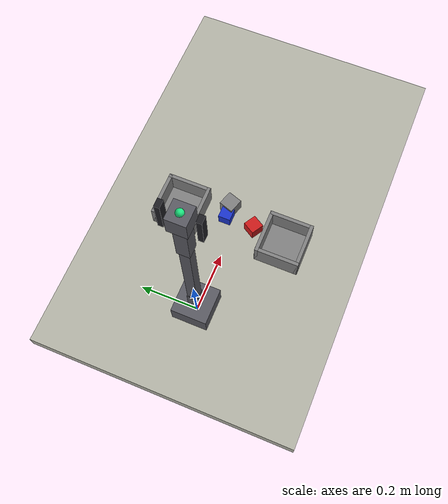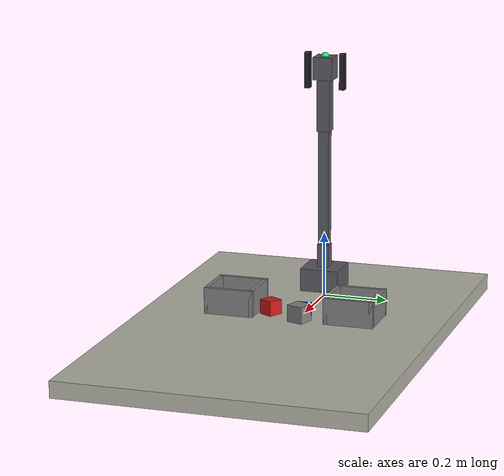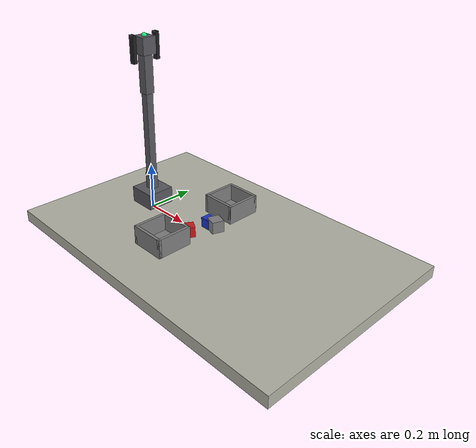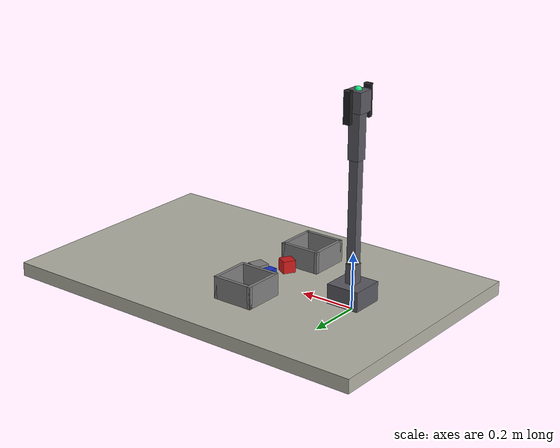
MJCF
<mujoco model="Autonomous reference tabletop arm revision_regression_scene_task_req_a_tabletop_robot_arm_that_sorts_red_and_blue_blo_stress_002">
  <compiler angle="radian" coordinate="local" />
  <option timestep="0.002" gravity="0 0 -9.81" />
  <default>
    <joint damping="0.8" armature="0.01" />
    <geom friction="1 0.1 0.01" />
  </default>
  <asset>
    <material name="mat_red" rgba="0.8 0.1 0.1 1" />
    <material name="mat_blue" rgba="0.1 0.2 0.8 1" />
    <material name="mat_gray" rgba="0.5 0.5 0.5 1" />
    <material name="mat_link" rgba="0.35 0.35 0.38 1" />
  </asset>
  <worldbody>
    <light name="key" pos="0 0 2" dir="0 0 -1" />
    <geom name="table" type="box" size="0.7 0.45 0.025" pos="0.4 0 0" rgba="0.7 0.7 0.65 1" />
    <body name="base_link" pos="0.0 0.0 0.025">
      <geom name="base_link_geom" type="box" size="0.06 0.06 0.035" pos="0 0 0.035" mass="0.45" material="mat_link" />
      <body name="upper_link" pos="0.0 0.0 0.07">
        <joint name="base_yaw" type="hinge" axis="0.0 0.0 1.0" pos="0 0 0" limited="true" range="-3.14 3.14" />
        <geom name="upper_link_geom" type="box" size="0.018 0.018 0.035" pos="0 0 0.035" mass="0.22" material="mat_link" />
        <body name="forearm_link" pos="0.0 0.0 0.07">
          <joint name="shoulder_pitch" type="hinge" axis="0.0 1.0 0.0" pos="0 0 0" limited="true" range="-1.57 1.57" />
          <geom name="forearm_link_geom" type="box" size="0.016 0.016 0.1785" pos="0 0 0.1785" mass="0.18" material="mat_link" />
          <body name="wrist_link" pos="0.0 0.0 0.357">
            <joint name="elbow_pitch" type="hinge" axis="0.0 1.0 0.0" pos="0 0 0" limited="true" range="-1.57 1.57" />
            <geom name="wrist_link_geom" type="box" size="0.02 0.02 0.08" pos="0 0 0.08" mass="0.035" material="mat_link" />
            <camera name="wrist_rgbd_camera" pos="0.03 0.0 0.04" xyaxes="0 -1 0 0 0 1" mode="fixed" user="0.0 0.0 0.0" />
            <body name="gripper_link" pos="0.0 0.0 0.16">
              <geom name="gripper_link_geom" type="box" size="0.03 0.03 0.035" pos="0 0 0.035" mass="0.04" material="mat_link" />
              <site name="ee_site" pos="0 0 0.07" size="0.012" rgba="0.1 0.9 0.5 1" />
              <site name="grasp_site" pos="0 0 0.015" size="0.01" rgba="1 0.7 0.1 1" />
              <body name="left_gripper_finger" pos="0 0.055 0.07">
                <joint name="left_gripper_slide" type="slide" axis="0 -1 0" limited="true" range="0 0.04" damping="2.0" />
                <geom name="left_gripper_pad" type="box" size="0.012 0.008 0.055" pos="0 0 -0.045" mass="0.025" rgba="0.12 0.12 0.14 1" friction="1.5 0.1 0.01" />
              </body>
              <body name="right_gripper_finger" pos="0 -0.055 0.07">
                <joint name="right_gripper_slide" type="slide" axis="0 1 0" limited="true" range="0 0.04" damping="2.0" />
                <geom name="right_gripper_pad" type="box" size="0.012 0.008 0.055" pos="0 0 -0.045" mass="0.025" rgba="0.12 0.12 0.14 1" friction="1.5 0.1 0.01" />
              </body>
            </body>
          </body>
        </body>
      </body>
    </body>
    <body name="obj_red_block" pos="0.3227 -0.069 0.0483" euler="0 0 -0.537">
      <freejoint name="free_red_block" />
      <geom name="red_block" type="box" size="0.0223 0.0223 0.0223" mass="0.0663" friction="0.893 0.1 0.01" material="mat_red" />
    </body>
    <body name="obj_blue_block" pos="0.3284 0.0325 0.0469" euler="0 0 -1.5676">
      <freejoint name="free_blue_block" />
      <geom name="blue_block" type="box" size="0.0209 0.0209 0.0209" mass="0.0688" friction="0.927 0.1 0.01" material="mat_blue" />
    </body>
    <geom name="red_bin" type="box" size="0.07 0.07 0.004" pos="0.3011 -0.185 0.029" material="mat_gray" />
    <geom name="red_bin_wall_px" type="box" size="0.006 0.07600000000000001 0.04" pos="0.3711 -0.185 0.065" material="mat_gray" />
    <geom name="red_bin_wall_nx" type="box" size="0.006 0.07600000000000001 0.04" pos="0.2311 -0.185 0.065" material="mat_gray" />
    <geom name="red_bin_wall_py" type="box" size="0.07600000000000001 0.006 0.04" pos="0.3011 -0.115 0.065" material="mat_gray" />
    <geom name="red_bin_wall_ny" type="box" size="0.07600000000000001 0.006 0.04" pos="0.3011 -0.255 0.065" material="mat_gray" />
    <geom name="blue_bin" type="box" size="0.07 0.07 0.004" pos="0.3013 0.1846 0.029" material="mat_gray" />
    <geom name="blue_bin_wall_px" type="box" size="0.006 0.07600000000000001 0.04" pos="0.3713 0.1846 0.065" material="mat_gray" />
    <geom name="blue_bin_wall_nx" type="box" size="0.006 0.07600000000000001 0.04" pos="0.2313 0.1846 0.065" material="mat_gray" />
    <geom name="blue_bin_wall_py" type="box" size="0.07600000000000001 0.006 0.04" pos="0.3013 0.2546 0.065" material="mat_gray" />
    <geom name="blue_bin_wall_ny" type="box" size="0.07600000000000001 0.006 0.04" pos="0.3013 0.1146 0.065" material="mat_gray" />
    <body name="obj_distractor_2_0" pos="0.3682 0.0339 0.0515" euler="0 0 2.8243">
      <freejoint name="free_distractor_2_0" />
      <geom name="distractor_2_0" type="box" size="0.0255 0.0255 0.0255" mass="0.0592" friction="0.824 0.1 0.01" material="mat_gray" />
    </body>
  </worldbody>
  <actuator>
    <motor name="base_yaw_motor" joint="base_yaw" gear="1" forcerange="-12.0 12.0" />
    <motor name="shoulder_pitch_motor" joint="shoulder_pitch" gear="1" forcerange="-12.0 12.0" />
    <motor name="elbow_pitch_motor" joint="elbow_pitch" gear="1" forcerange="-12.0 12.0" />
    <motor name="left_gripper_slide_motor" joint="left_gripper_slide" gear="1" forcerange="-25 25" />
    <motor name="right_gripper_slide_motor" joint="right_gripper_slide" gear="1" forcerange="-25 25" />
  </actuator>
  <sensor>
    <framepos name="wrist_rgbd_camera_pose" objtype="camera" objname="wrist_rgbd_camera" />
    <framequat name="wrist_rgbd_camera_orientation" objtype="camera" objname="wrist_rgbd_camera" />
  </sensor>
</mujoco>
